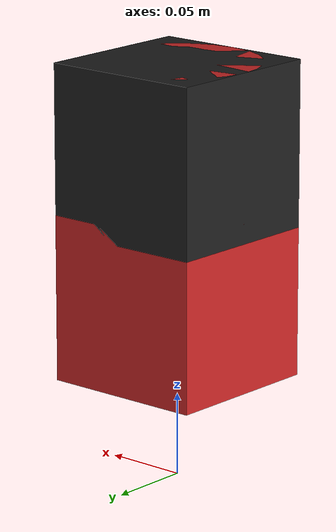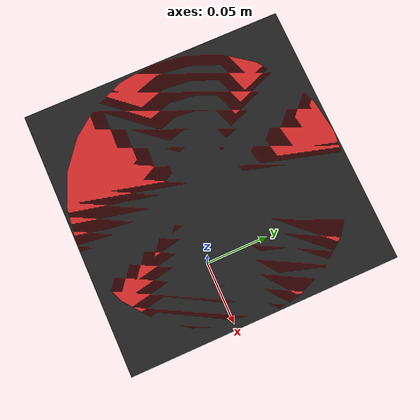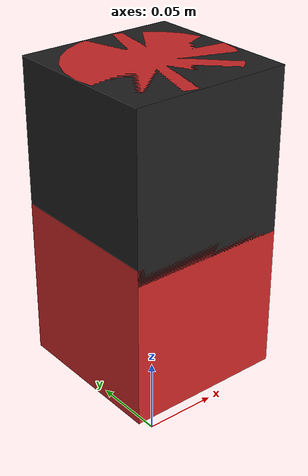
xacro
<?xml version="1.0"?>
<robot xmlns:xacro="http://www.ros.org/wiki/xacro">

	<xacro:include filename="gimbal_camera_inertial_macros.xacro"/>

	<link name="world">
		<origin xyz="0 0 0.2"/>
	</link>

	<gazebo reference="world">
		<static>true</static>
	</gazebo>

	<!-- STAND_LINK -->
	<joint name="stand_joint" type="fixed">
		<parent link="world"/>
		<child link="stand_link"/>
		<origin xyz="0 0 0"/>
	</joint>

	<link name="stand_link">
		<visual>
			<origin xyz="0 0 0.2"/>
			<geometry>
				<cylinder radius="0.05" length="0.1"/>
			</geometry>
		</visual>

		<collision>
			<origin xyz="0 0 0.2"/>
			<geometry>
				<cylinder radius="0.05" length="0.01"/>
			</geometry>
		</collision>

		<xacro:inertial_cylinder mass="0.05" length="0.01" radius="0.005">
            <origin xyz="0 0 0.2" rpy="0 0 0"/>
        </xacro:inertial_cylinder>
	</link>

	<gazebo reference="stand_link">
		<material>Gazebo/Red</material>
		<mu1 value="10"/>
		<mu2 value="10"/>
	</gazebo>

	<!-- AX1_LINK -->
	<joint name="ax1_joint" type="revolute">
		<parent link="stand_link"/>
		<child link="ax1_link"/>
		<limit effort="100" velocity="5" upper="${pi*2}" lower="${-pi*2}"/>
		<axis xyz="0 0 1"/>
		<origin xyz="0 0 0.1"/>
		<dynamics damping="10.0" friction="10.0"/>
	</joint>

	<link name="ax1_link">
		<visual>
			<origin xyz="0 0 0.01"/>
			<geometry>
				<box size="0.1 0.1 0.1"/>
			</geometry>
		</visual>

		<collision>
			<origin xyz="0 0 0"/>
			<geometry>
				<box size="0.1 0.1 0.1"/>
			</geometry>
		</collision>

		<xacro:inertial_box mass="0.05" x="0.1" y="0.1" z="0.1">
            <origin xyz="0 0 0.2" rpy="0 0 0"/>
        </xacro:inertial_box>
	</link>

	<gazebo reference="ax1_link">
		<material>Gazebo/Red</material>
		<mu1 value="10"/>
		<mu2 value="10"/>
	</gazebo>

	<!-- AX2_LINK -->
	<joint name="ax2_joint" type="revolute">
		<parent link="ax1_link"/>
		<child link="ax2_link"/>
		<limit effort="100" velocity="5" upper="${pi/2}" lower="${-pi/2}"/>
		<origin xyz="0 0 0.1"/>
		<axis xyz="1 0 0"/>
		<dynamics damping="10.0" friction="10.0"/>
	</joint>

	<link name="ax2_link">
		<visual>
			<origin xyz="0 0 0"/>
			<geometry>
				<box size="0.1 0.1 0.1"/>
			</geometry>
		</visual>

		<collision>
			<origin xyz="0 0 0.01"/>
			<geometry>
				<box size="0.1 0.1 0.1"/>
			</geometry>
		</collision>

		<xacro:inertial_box mass="0.05" x="0.1" y="0.1" z="0.1">
            <origin xyz="0 0 0.2" rpy="0 0 0"/>
        </xacro:inertial_box>
	</link>

	<gazebo reference="ax2_link">
		<material>Gazebo/Black</material>
		<mu1 value="10"/>
		<mu2 value="10"/>
	</gazebo>

<!-- camera link -->
  <joint name="camera_link" type="fixed">
    <origin rpy="0 ${-pi/2} 0" xyz="0 0 0"/>
    <parent link="ax2_link" />
    <child link="camera_link" />
  </joint>
  <link name="camera_link"/>

<!-- controller -->
	<ros2_control name="GazeboSystem" type="system">
    	<hardware>
      		<plugin>gazebo_ros2_control/GazeboSystem</plugin>
    	</hardware>

		<joint name="ax1_joint">
      		<command_interface name="position">
        		<param name="min">${-pi*2}</param>
        		<param name="max">${pi*2}</param>
      		</command_interface>
      		<state_interface name="position">
				<param name="initial_value">${pi/4}</param>
			</state_interface>
      		<state_interface name="velocity"/>
    	</joint>

    	<joint name="ax2_joint">
      		<command_interface name="position">
        		<param name="min">${-pi/2}</param>
        		<param name="max">${pi/2}</param>
      		</command_interface>
      		<state_interface name="position">
				<param name="initial_value">${pi/4}</param>
			</state_interface>
      		<state_interface name="velocity"/>
    	</joint>

  	</ros2_control>

 <gazebo reference="camera_link">
    <sensor name="front_camera" type="camera">
      <camera>
        <horizontal_fov>2.09</horizontal_fov>
        <image>
          <width>750</width>
          <height>750</height>
          <format>R8G8B8</format>
        </image>
        <clip>
          <near>0.1</near>
          <far>100</far>
        </clip>
        <noise>
          <type>gaussian</type>
          <mean>0.0</mean>
          <stddev>0.005</stddev>
        </noise>
      </camera>
      <always_on>1</always_on>
      <update_rate>60</update_rate>
      <visualize>true</visualize>
      <plugin name="camera_front" filename="libgazebo_ros_camera.so">
        <ros>
          <remapping>image_raw:=camera_front</remapping>
          <remapping>camera_info:=camera_front_info</remapping>
        </ros>
        <camera_name>front</camera_name>
        <frame_name>front_cam_link</frame_name>
        <hack_baseline>0.07</hack_baseline>
      </plugin>
    </sensor>
  </gazebo>

</robot>
